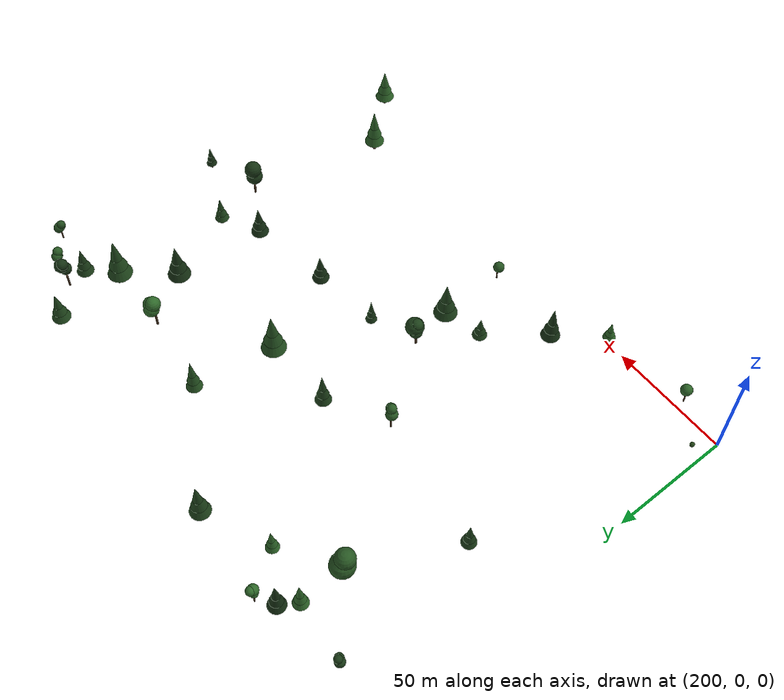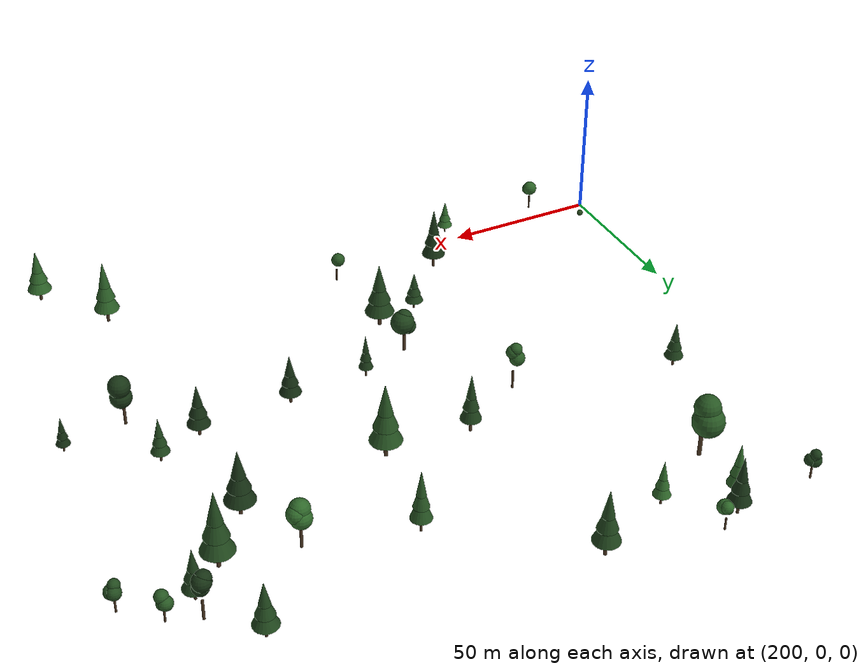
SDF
<sdf version="1.9">
 <world name="detection_world_terrain">
  <model name="tree_0">
   <static>true</static>
   <pose>388.88 87.70 16.57 0 0 4.92</pose>
   <link name="link">
    <visual name="trunk">
     <pose>0 0 2.38 0 0 0</pose>
     <geometry><cylinder><radius>0.33</radius><length>4.77</length></cylinder></geometry>
     <material><ambient>0.28 0.2 0.12 1</ambient><diffuse>0.28 0.2 0.12 1</diffuse></material>
    </visual>
    <visual name="canopy0">
     <pose>0 0 6.13 0 0 0</pose>
     <geometry><cone><radius>2.74</radius><length>5.72</length></cone></geometry>
     <material><ambient>0.125 0.277 0.111 1</ambient><diffuse>0.125 0.277 0.111 1</diffuse></material>
    </visual>
    <visual name="canopy1">
     <pose>0 0 8.86 0 0 0</pose>
     <geometry><cone><radius>2.05</radius><length>5.72</length></cone></geometry>
     <material><ambient>0.125 0.277 0.111 1</ambient><diffuse>0.125 0.277 0.111 1</diffuse></material>
    </visual>
    <visual name="canopy2">
     <pose>0 0 11.58 0 0 0</pose>
     <geometry><cone><radius>1.23</radius><length>5.72</length></cone></geometry>
     <material><ambient>0.125 0.277 0.111 1</ambient><diffuse>0.125 0.277 0.111 1</diffuse></material>
    </visual>
   </link>
  </model>
  <model name="tree_3">
   <static>true</static>
   <pose>381.01 16.56 16.05 0 0 4.20</pose>
   <link name="link">
    <visual name="trunk">
     <pose>0 0 3.51 0 0 0</pose>
     <geometry><cylinder><radius>0.46</radius><length>7.03</length></cylinder></geometry>
     <material><ambient>0.28 0.2 0.12 1</ambient><diffuse>0.28 0.2 0.12 1</diffuse></material>
    </visual>
    <visual name="canopy0">
     <pose>0 0 9.03 0 0 0</pose>
     <geometry><cone><radius>3.85</radius><length>8.43</length></cone></geometry>
     <material><ambient>0.170 0.378 0.151 1</ambient><diffuse>0.170 0.378 0.151 1</diffuse></material>
    </visual>
    <visual name="canopy1">
     <pose>0 0 13.05 0 0 0</pose>
     <geometry><cone><radius>2.89</radius><length>8.43</length></cone></geometry>
     <material><ambient>0.170 0.378 0.151 1</ambient><diffuse>0.170 0.378 0.151 1</diffuse></material>
    </visual>
    <visual name="canopy2">
     <pose>0 0 17.06 0 0 0</pose>
     <geometry><cone><radius>1.73</radius><length>8.43</length></cone></geometry>
     <material><ambient>0.170 0.378 0.151 1</ambient><diffuse>0.170 0.378 0.151 1</diffuse></material>
    </visual>
   </link>
  </model>
  <model name="tree_4">
   <static>true</static>
   <pose>220.23 -2.18 3.32 0 0 4.44</pose>
   <link name="link">
    <visual name="trunk">
     <pose>0 0 2.35 0 0 0</pose>
     <geometry><cylinder><radius>0.30</radius><length>4.70</length></cylinder></geometry>
     <material><ambient>0.28 0.2 0.12 1</ambient><diffuse>0.28 0.2 0.12 1</diffuse></material>
    </visual>
    <visual name="canopy0">
     <pose>-0.46 0.10 8.18 0 0 0</pose>
     <geometry><sphere><radius>2.34</radius></sphere></geometry>
     <material><ambient>0.175 0.389 0.156 1</ambient><diffuse>0.175 0.389 0.156 1</diffuse></material>
    </visual>
    <visual name="canopy1">
     <pose>0.45 -0.08 7.65 0 0 0</pose>
     <geometry><sphere><radius>1.78</radius></sphere></geometry>
     <material><ambient>0.175 0.389 0.156 1</ambient><diffuse>0.175 0.389 0.156 1</diffuse></material>
    </visual>
    <visual name="canopy2">
     <pose>0.01 0.65 7.74 0 0 0</pose>
     <geometry><sphere><radius>1.98</radius></sphere></geometry>
     <material><ambient>0.175 0.389 0.156 1</ambient><diffuse>0.175 0.389 0.156 1</diffuse></material>
    </visual>
   </link>
  </model>
  <model name="tree_5">
   <static>true</static>
   <pose>329.49 106.92 10.80 0 0 2.79</pose>
   <link name="link">
    <visual name="trunk">
     <pose>0 0 4.11 0 0 0</pose>
     <geometry><cylinder><radius>0.59</radius><length>8.22</length></cylinder></geometry>
     <material><ambient>0.28 0.2 0.12 1</ambient><diffuse>0.28 0.2 0.12 1</diffuse></material>
    </visual>
    <visual name="canopy0">
     <pose>0 0 10.57 0 0 0</pose>
     <geometry><cone><radius>4.89</radius><length>9.87</length></cone></geometry>
     <material><ambient>0.144 0.321 0.128 1</ambient><diffuse>0.144 0.321 0.128 1</diffuse></material>
    </visual>
    <visual name="canopy1">
     <pose>0 0 15.27 0 0 0</pose>
     <geometry><cone><radius>3.67</radius><length>9.87</length></cone></geometry>
     <material><ambient>0.144 0.321 0.128 1</ambient><diffuse>0.144 0.321 0.128 1</diffuse></material>
    </visual>
    <visual name="canopy2">
     <pose>0 0 19.97 0 0 0</pose>
     <geometry><cone><radius>2.20</radius><length>9.87</length></cone></geometry>
     <material><ambient>0.144 0.321 0.128 1</ambient><diffuse>0.144 0.321 0.128 1</diffuse></material>
    </visual>
   </link>
  </model>
  <model name="tree_8">
   <static>true</static>
   <pose>399.63 143.85 18.35 0 0 5.10</pose>
   <link name="link">
    <visual name="trunk">
     <pose>0 0 2.71 0 0 0</pose>
     <geometry><cylinder><radius>0.40</radius><length>5.42</length></cylinder></geometry>
     <material><ambient>0.28 0.2 0.12 1</ambient><diffuse>0.28 0.2 0.12 1</diffuse></material>
    </visual>
    <visual name="canopy0">
     <pose>0 0 6.97 0 0 0</pose>
     <geometry><cone><radius>3.35</radius><length>6.50</length></cone></geometry>
     <material><ambient>0.111 0.246 0.098 1</ambient><diffuse>0.111 0.246 0.098 1</diffuse></material>
    </visual>
    <visual name="canopy1">
     <pose>0 0 10.06 0 0 0</pose>
     <geometry><cone><radius>2.51</radius><length>6.50</length></cone></geometry>
     <material><ambient>0.111 0.246 0.098 1</ambient><diffuse>0.111 0.246 0.098 1</diffuse></material>
    </visual>
    <visual name="canopy2">
     <pose>0 0 13.16 0 0 0</pose>
     <geometry><cone><radius>1.51</radius><length>6.50</length></cone></geometry>
     <material><ambient>0.111 0.246 0.098 1</ambient><diffuse>0.111 0.246 0.098 1</diffuse></material>
    </visual>
   </link>
  </model>
  <model name="tree_9">
   <static>true</static>
   <pose>389.90 134.31 17.17 0 0 4.15</pose>
   <link name="link">
    <visual name="trunk">
     <pose>0 0 4.08 0 0 0</pose>
     <geometry><cylinder><radius>0.58</radius><length>8.15</length></cylinder></geometry>
     <material><ambient>0.28 0.2 0.12 1</ambient><diffuse>0.28 0.2 0.12 1</diffuse></material>
    </visual>
    <visual name="canopy0">
     <pose>0 0 10.48 0 0 0</pose>
     <geometry><cone><radius>4.81</radius><length>9.78</length></cone></geometry>
     <material><ambient>0.130 0.288 0.115 1</ambient><diffuse>0.130 0.288 0.115 1</diffuse></material>
    </visual>
    <visual name="canopy1">
     <pose>0 0 15.14 0 0 0</pose>
     <geometry><cone><radius>3.61</radius><length>9.78</length></cone></geometry>
     <material><ambient>0.130 0.288 0.115 1</ambient><diffuse>0.130 0.288 0.115 1</diffuse></material>
    </visual>
    <visual name="canopy2">
     <pose>0 0 19.80 0 0 0</pose>
     <geometry><cone><radius>2.16</radius><length>9.78</length></cone></geometry>
     <material><ambient>0.130 0.288 0.115 1</ambient><diffuse>0.130 0.288 0.115 1</diffuse></material>
    </visual>
   </link>
  </model>
  <model name="tree_10">
   <static>true</static>
   <pose>419.25 141.76 20.75 0 0 0.28</pose>
   <link name="link">
    <visual name="trunk">
     <pose>0 0 1.95 0 0 0</pose>
     <geometry><cylinder><radius>0.28</radius><length>3.90</length></cylinder></geometry>
     <material><ambient>0.28 0.2 0.12 1</ambient><diffuse>0.28 0.2 0.12 1</diffuse></material>
    </visual>
    <visual name="canopy0">
     <pose>0.18 0.48 6.81 0 0 0</pose>
     <geometry><sphere><radius>2.00</radius></sphere></geometry>
     <material><ambient>0.134 0.297 0.119 1</ambient><diffuse>0.134 0.297 0.119 1</diffuse></material>
    </visual>
    <visual name="canopy1">
     <pose>-0.54 -0.39 8.35 0 0 0</pose>
     <geometry><sphere><radius>1.67</radius></sphere></geometry>
     <material><ambient>0.134 0.297 0.119 1</ambient><diffuse>0.134 0.297 0.119 1</diffuse></material>
    </visual>
    <visual name="canopy2">
     <pose>0.44 -0.56 6.54 0 0 0</pose>
     <geometry><sphere><radius>1.97</radius></sphere></geometry>
     <material><ambient>0.134 0.297 0.119 1</ambient><diffuse>0.134 0.297 0.119 1</diffuse></material>
    </visual>
   </link>
  </model>
  <model name="tree_11">
   <static>true</static>
   <pose>334.77 139.41 11.02 0 0 3.81</pose>
   <link name="link">
    <visual name="trunk">
     <pose>0 0 3.42 0 0 0</pose>
     <geometry><cylinder><radius>0.38</radius><length>6.83</length></cylinder></geometry>
     <material><ambient>0.28 0.2 0.12 1</ambient><diffuse>0.28 0.2 0.12 1</diffuse></material>
    </visual>
    <visual name="canopy0">
     <pose>0 0 8.79 0 0 0</pose>
     <geometry><cone><radius>3.17</radius><length>8.20</length></cone></geometry>
     <material><ambient>0.150 0.332 0.133 1</ambient><diffuse>0.150 0.332 0.133 1</diffuse></material>
    </visual>
    <visual name="canopy1">
     <pose>0 0 12.69 0 0 0</pose>
     <geometry><cone><radius>2.37</radius><length>8.20</length></cone></geometry>
     <material><ambient>0.150 0.332 0.133 1</ambient><diffuse>0.150 0.332 0.133 1</diffuse></material>
    </visual>
    <visual name="canopy2">
     <pose>0 0 16.60 0 0 0</pose>
     <geometry><cone><radius>1.42</radius><length>8.20</length></cone></geometry>
     <material><ambient>0.150 0.332 0.133 1</ambient><diffuse>0.150 0.332 0.133 1</diffuse></material>
    </visual>
   </link>
  </model>
  <model name="tree_17">
   <static>true</static>
   <pose>270.19 20.60 6.46 0 0 1.76</pose>
   <link name="link">
    <visual name="trunk">
     <pose>0 0 3.57 0 0 0</pose>
     <geometry><cylinder><radius>0.46</radius><length>7.13</length></cylinder></geometry>
     <material><ambient>0.28 0.2 0.12 1</ambient><diffuse>0.28 0.2 0.12 1</diffuse></material>
    </visual>
    <visual name="canopy0">
     <pose>0 0 9.17 0 0 0</pose>
     <geometry><cone><radius>3.81</radius><length>8.56</length></cone></geometry>
     <material><ambient>0.086 0.191 0.076 1</ambient><diffuse>0.086 0.191 0.076 1</diffuse></material>
    </visual>
    <visual name="canopy1">
     <pose>0 0 13.25 0 0 0</pose>
     <geometry><cone><radius>2.86</radius><length>8.56</length></cone></geometry>
     <material><ambient>0.086 0.191 0.076 1</ambient><diffuse>0.086 0.191 0.076 1</diffuse></material>
    </visual>
    <visual name="canopy2">
     <pose>0 0 17.32 0 0 0</pose>
     <geometry><cone><radius>1.71</radius><length>8.56</length></cone></geometry>
     <material><ambient>0.086 0.191 0.076 1</ambient><diffuse>0.086 0.191 0.076 1</diffuse></material>
    </visual>
   </link>
  </model>
  <model name="tree_18">
   <static>true</static>
   <pose>268.03 154.06 6.07 0 0 3.98</pose>
   <link name="link">
    <visual name="trunk">
     <pose>0 0 2.46 0 0 0</pose>
     <geometry><cylinder><radius>0.32</radius><length>4.91</length></cylinder></geometry>
     <material><ambient>0.28 0.2 0.12 1</ambient><diffuse>0.28 0.2 0.12 1</diffuse></material>
    </visual>
    <visual name="canopy0">
     <pose>0 0 6.31 0 0 0</pose>
     <geometry><cone><radius>2.65</radius><length>5.89</length></cone></geometry>
     <material><ambient>0.183 0.407 0.163 1</ambient><diffuse>0.183 0.407 0.163 1</diffuse></material>
    </visual>
    <visual name="canopy1">
     <pose>0 0 9.12 0 0 0</pose>
     <geometry><cone><radius>1.99</radius><length>5.89</length></cone></geometry>
     <material><ambient>0.183 0.407 0.163 1</ambient><diffuse>0.183 0.407 0.163 1</diffuse></material>
    </visual>
    <visual name="canopy2">
     <pose>0 0 11.93 0 0 0</pose>
     <geometry><cone><radius>1.19</radius><length>5.89</length></cone></geometry>
     <material><ambient>0.183 0.407 0.163 1</ambient><diffuse>0.183 0.407 0.163 1</diffuse></material>
    </visual>
   </link>
  </model>
  <model name="tree_19">
   <static>true</static>
   <pose>344.22 73.31 11.32 0 0 1.21</pose>
   <link name="link">
    <visual name="trunk">
     <pose>0 0 2.77 0 0 0</pose>
     <geometry><cylinder><radius>0.40</radius><length>5.53</length></cylinder></geometry>
     <material><ambient>0.28 0.2 0.12 1</ambient><diffuse>0.28 0.2 0.12 1</diffuse></material>
    </visual>
    <visual name="canopy0">
     <pose>0 0 7.11 0 0 0</pose>
     <geometry><cone><radius>3.35</radius><length>6.64</length></cone></geometry>
     <material><ambient>0.081 0.180 0.072 1</ambient><diffuse>0.081 0.180 0.072 1</diffuse></material>
    </visual>
    <visual name="canopy1">
     <pose>0 0 10.27 0 0 0</pose>
     <geometry><cone><radius>2.51</radius><length>6.64</length></cone></geometry>
     <material><ambient>0.081 0.180 0.072 1</ambient><diffuse>0.081 0.180 0.072 1</diffuse></material>
    </visual>
    <visual name="canopy2">
     <pose>0 0 13.43 0 0 0</pose>
     <geometry><cone><radius>1.51</radius><length>6.64</length></cone></geometry>
     <material><ambient>0.081 0.180 0.072 1</ambient><diffuse>0.081 0.180 0.072 1</diffuse></material>
    </visual>
   </link>
  </model>
  <model name="tree_21">
   <static>true</static>
   <pose>396.78 -1.84 17.58 0 0 5.10</pose>
   <link name="link">
    <visual name="trunk">
     <pose>0 0 2.89 0 0 0</pose>
     <geometry><cylinder><radius>0.45</radius><length>5.79</length></cylinder></geometry>
     <material><ambient>0.28 0.2 0.12 1</ambient><diffuse>0.28 0.2 0.12 1</diffuse></material>
    </visual>
    <visual name="canopy0">
     <pose>0 0 7.44 0 0 0</pose>
     <geometry><cone><radius>3.72</radius><length>6.95</length></cone></geometry>
     <material><ambient>0.176 0.390 0.156 1</ambient><diffuse>0.176 0.390 0.156 1</diffuse></material>
    </visual>
    <visual name="canopy1">
     <pose>0 0 10.75 0 0 0</pose>
     <geometry><cone><radius>2.79</radius><length>6.95</length></cone></geometry>
     <material><ambient>0.176 0.390 0.156 1</ambient><diffuse>0.176 0.390 0.156 1</diffuse></material>
    </visual>
    <visual name="canopy2">
     <pose>0 0 14.06 0 0 0</pose>
     <geometry><cone><radius>1.67</radius><length>6.95</length></cone></geometry>
     <material><ambient>0.176 0.390 0.156 1</ambient><diffuse>0.176 0.390 0.156 1</diffuse></material>
    </visual>
   </link>
  </model>
  <model name="tree_22">
   <static>true</static>
   <pose>257.60 169.80 5.21 0 0 1.76</pose>
   <link name="link">
    <visual name="trunk">
     <pose>0 0 1.95 0 0 0</pose>
     <geometry><cylinder><radius>0.29</radius><length>3.91</length></cylinder></geometry>
     <material><ambient>0.28 0.2 0.12 1</ambient><diffuse>0.28 0.2 0.12 1</diffuse></material>
    </visual>
    <visual name="canopy0">
     <pose>-0.14 0.26 7.03 0 0 0</pose>
     <geometry><sphere><radius>1.64</radius></sphere></geometry>
     <material><ambient>0.188 0.417 0.167 1</ambient><diffuse>0.188 0.417 0.167 1</diffuse></material>
    </visual>
    <visual name="canopy1">
     <pose>0.32 -0.73 8.44 0 0 0</pose>
     <geometry><sphere><radius>1.91</radius></sphere></geometry>
     <material><ambient>0.188 0.417 0.167 1</ambient><diffuse>0.188 0.417 0.167 1</diffuse></material>
    </visual>
    <visual name="canopy2">
     <pose>-0.59 -0.56 7.96 0 0 0</pose>
     <geometry><sphere><radius>2.21</radius></sphere></geometry>
     <material><ambient>0.188 0.417 0.167 1</ambient><diffuse>0.188 0.417 0.167 1</diffuse></material>
    </visual>
   </link>
  </model>
  <model name="tree_24">
   <static>true</static>
   <pose>409.30 149.07 19.62 0 0 4.51</pose>
   <link name="link">
    <visual name="trunk">
     <pose>0 0 1.85 0 0 0</pose>
     <geometry><cylinder><radius>0.28</radius><length>3.71</length></cylinder></geometry>
     <material><ambient>0.28 0.2 0.12 1</ambient><diffuse>0.28 0.2 0.12 1</diffuse></material>
    </visual>
    <visual name="canopy0">
     <pose>0.22 0.30 8.21 0 0 0</pose>
     <geometry><sphere><radius>1.92</radius></sphere></geometry>
     <material><ambient>0.157 0.348 0.139 1</ambient><diffuse>0.157 0.348 0.139 1</diffuse></material>
    </visual>
    <visual name="canopy1">
     <pose>-0.18 0.05 6.37 0 0 0</pose>
     <geometry><sphere><radius>1.88</radius></sphere></geometry>
     <material><ambient>0.157 0.348 0.139 1</ambient><diffuse>0.157 0.348 0.139 1</diffuse></material>
    </visual>
    <visual name="canopy2">
     <pose>-0.69 -0.49 6.71 0 0 0</pose>
     <geometry><sphere><radius>2.04</radius></sphere></geometry>
     <material><ambient>0.157 0.348 0.139 1</ambient><diffuse>0.157 0.348 0.139 1</diffuse></material>
    </visual>
   </link>
  </model>
  <model name="tree_25">
   <static>true</static>
   <pose>287.65 40.98 7.52 0 0 2.48</pose>
   <link name="link">
    <visual name="trunk">
     <pose>0 0 2.15 0 0 0</pose>
     <geometry><cylinder><radius>0.35</radius><length>4.30</length></cylinder></geometry>
     <material><ambient>0.28 0.2 0.12 1</ambient><diffuse>0.28 0.2 0.12 1</diffuse></material>
    </visual>
    <visual name="canopy0">
     <pose>0 0 5.53 0 0 0</pose>
     <geometry><cone><radius>2.93</radius><length>5.16</length></cone></geometry>
     <material><ambient>0.112 0.249 0.100 1</ambient><diffuse>0.112 0.249 0.100 1</diffuse></material>
    </visual>
    <visual name="canopy1">
     <pose>0 0 7.99 0 0 0</pose>
     <geometry><cone><radius>2.20</radius><length>5.16</length></cone></geometry>
     <material><ambient>0.112 0.249 0.100 1</ambient><diffuse>0.112 0.249 0.100 1</diffuse></material>
    </visual>
    <visual name="canopy2">
     <pose>0 0 10.45 0 0 0</pose>
     <geometry><cone><radius>1.32</radius><length>5.16</length></cone></geometry>
     <material><ambient>0.112 0.249 0.100 1</ambient><diffuse>0.112 0.249 0.100 1</diffuse></material>
    </visual>
   </link>
  </model>
  <model name="tree_28">
   <static>true</static>
   <pose>388.17 161.92 16.92 0 0 1.90</pose>
   <link name="link">
    <visual name="trunk">
     <pose>0 0 2.92 0 0 0</pose>
     <geometry><cylinder><radius>0.43</radius><length>5.85</length></cylinder></geometry>
     <material><ambient>0.28 0.2 0.12 1</ambient><diffuse>0.28 0.2 0.12 1</diffuse></material>
    </visual>
    <visual name="canopy0">
     <pose>0 0 7.52 0 0 0</pose>
     <geometry><cone><radius>3.61</radius><length>7.02</length></cone></geometry>
     <material><ambient>0.127 0.282 0.113 1</ambient><diffuse>0.127 0.282 0.113 1</diffuse></material>
    </visual>
    <visual name="canopy1">
     <pose>0 0 10.86 0 0 0</pose>
     <geometry><cone><radius>2.71</radius><length>7.02</length></cone></geometry>
     <material><ambient>0.127 0.282 0.113 1</ambient><diffuse>0.127 0.282 0.113 1</diffuse></material>
    </visual>
    <visual name="canopy2">
     <pose>0 0 14.20 0 0 0</pose>
     <geometry><cone><radius>1.62</radius><length>7.02</length></cone></geometry>
     <material><ambient>0.127 0.282 0.113 1</ambient><diffuse>0.127 0.282 0.113 1</diffuse></material>
    </visual>
   </link>
  </model>
  <model name="tree_29">
   <static>true</static>
   <pose>366.95 134.10 14.15 0 0 2.66</pose>
   <link name="link">
    <visual name="trunk">
     <pose>0 0 3.29 0 0 0</pose>
     <geometry><cylinder><radius>0.43</radius><length>6.57</length></cylinder></geometry>
     <material><ambient>0.28 0.2 0.12 1</ambient><diffuse>0.28 0.2 0.12 1</diffuse></material>
    </visual>
    <visual name="canopy0">
     <pose>0.30 -0.93 10.72 0 0 0</pose>
     <geometry><sphere><radius>3.08</radius></sphere></geometry>
     <material><ambient>0.186 0.414 0.166 1</ambient><diffuse>0.186 0.414 0.166 1</diffuse></material>
    </visual>
    <visual name="canopy1">
     <pose>-0.94 -1.05 12.17 0 0 0</pose>
     <geometry><sphere><radius>2.79</radius></sphere></geometry>
     <material><ambient>0.186 0.414 0.166 1</ambient><diffuse>0.186 0.414 0.166 1</diffuse></material>
    </visual>
    <visual name="canopy2">
     <pose>-0.11 -0.02 13.07 0 0 0</pose>
     <geometry><sphere><radius>2.99</radius></sphere></geometry>
     <material><ambient>0.186 0.414 0.166 1</ambient><diffuse>0.186 0.414 0.166 1</diffuse></material>
    </visual>
   </link>
  </model>
  <model name="tree_30">
   <static>true</static>
   <pose>293.67 166.08 7.90 0 0 0.40</pose>
   <link name="link">
    <visual name="trunk">
     <pose>0 0 3.65 0 0 0</pose>
     <geometry><cylinder><radius>0.49</radius><length>7.31</length></cylinder></geometry>
     <material><ambient>0.28 0.2 0.12 1</ambient><diffuse>0.28 0.2 0.12 1</diffuse></material>
    </visual>
    <visual name="canopy0">
     <pose>0 0 9.40 0 0 0</pose>
     <geometry><cone><radius>4.06</radius><length>8.77</length></cone></geometry>
     <material><ambient>0.120 0.266 0.106 1</ambient><diffuse>0.120 0.266 0.106 1</diffuse></material>
    </visual>
    <visual name="canopy1">
     <pose>0 0 13.57 0 0 0</pose>
     <geometry><cone><radius>3.05</radius><length>8.77</length></cone></geometry>
     <material><ambient>0.120 0.266 0.106 1</ambient><diffuse>0.120 0.266 0.106 1</diffuse></material>
    </visual>
    <visual name="canopy2">
     <pose>0 0 17.75 0 0 0</pose>
     <geometry><cone><radius>1.83</radius><length>8.77</length></cone></geometry>
     <material><ambient>0.120 0.266 0.106 1</ambient><diffuse>0.120 0.266 0.106 1</diffuse></material>
    </visual>
   </link>
  </model>
  <model name="tree_31">
   <static>true</static>
   <pose>392.72 68.68 17.22 0 0 0.93</pose>
   <link name="link">
    <visual name="trunk">
     <pose>0 0 2.86 0 0 0</pose>
     <geometry><cylinder><radius>0.42</radius><length>5.71</length></cylinder></geometry>
     <material><ambient>0.28 0.2 0.12 1</ambient><diffuse>0.28 0.2 0.12 1</diffuse></material>
    </visual>
    <visual name="canopy0">
     <pose>-0.21 -0.61 9.15 0 0 0</pose>
     <geometry><sphere><radius>3.26</radius></sphere></geometry>
     <material><ambient>0.094 0.209 0.083 1</ambient><diffuse>0.094 0.209 0.083 1</diffuse></material>
    </visual>
    <visual name="canopy1">
     <pose>-0.60 -0.74 9.79 0 0 0</pose>
     <geometry><sphere><radius>2.56</radius></sphere></geometry>
     <material><ambient>0.094 0.209 0.083 1</ambient><diffuse>0.094 0.209 0.083 1</diffuse></material>
    </visual>
    <visual name="canopy2">
     <pose>0.10 -0.73 13.01 0 0 0</pose>
     <geometry><sphere><radius>3.30</radius></sphere></geometry>
     <material><ambient>0.094 0.209 0.083 1</ambient><diffuse>0.094 0.209 0.083 1</diffuse></material>
    </visual>
   </link>
  </model>
  <model name="tree_32">
   <static>true</static>
   <pose>301.18 61.18 8.32 0 0 1.61</pose>
   <link name="link">
    <visual name="trunk">
     <pose>0 0 2.96 0 0 0</pose>
     <geometry><cylinder><radius>0.47</radius><length>5.93</length></cylinder></geometry>
     <material><ambient>0.28 0.2 0.12 1</ambient><diffuse>0.28 0.2 0.12 1</diffuse></material>
    </visual>
    <visual name="canopy0">
     <pose>-0.00 -0.00 12.15 0 0 0</pose>
     <geometry><sphere><radius>2.65</radius></sphere></geometry>
     <material><ambient>0.116 0.257 0.103 1</ambient><diffuse>0.116 0.257 0.103 1</diffuse></material>
    </visual>
    <visual name="canopy1">
     <pose>0.26 -0.67 10.76 0 0 0</pose>
     <geometry><sphere><radius>3.70</radius></sphere></geometry>
     <material><ambient>0.116 0.257 0.103 1</ambient><diffuse>0.116 0.257 0.103 1</diffuse></material>
    </visual>
    <visual name="canopy2">
     <pose>0.95 0.75 9.46 0 0 0</pose>
     <geometry><sphere><radius>2.58</radius></sphere></geometry>
     <material><ambient>0.116 0.257 0.103 1</ambient><diffuse>0.116 0.257 0.103 1</diffuse></material>
    </visual>
   </link>
  </model>
  <model name="tree_33">
   <static>true</static>
   <pose>376.83 116.39 15.47 0 0 0.53</pose>
   <link name="link">
    <visual name="trunk">
     <pose>0 0 3.51 0 0 0</pose>
     <geometry><cylinder><radius>0.54</radius><length>7.02</length></cylinder></geometry>
     <material><ambient>0.28 0.2 0.12 1</ambient><diffuse>0.28 0.2 0.12 1</diffuse></material>
    </visual>
    <visual name="canopy0">
     <pose>0 0 9.02 0 0 0</pose>
     <geometry><cone><radius>4.50</radius><length>8.42</length></cone></geometry>
     <material><ambient>0.088 0.196 0.078 1</ambient><diffuse>0.088 0.196 0.078 1</diffuse></material>
    </visual>
    <visual name="canopy1">
     <pose>0 0 13.03 0 0 0</pose>
     <geometry><cone><radius>3.38</radius><length>8.42</length></cone></geometry>
     <material><ambient>0.088 0.196 0.078 1</ambient><diffuse>0.088 0.196 0.078 1</diffuse></material>
    </visual>
    <visual name="canopy2">
     <pose>0 0 17.05 0 0 0</pose>
     <geometry><cone><radius>2.03</radius><length>8.42</length></cone></geometry>
     <material><ambient>0.088 0.196 0.078 1</ambient><diffuse>0.088 0.196 0.078 1</diffuse></material>
    </visual>
   </link>
  </model>
  <model name="tree_37">
   <static>true</static>
   <pose>256.39 2.33 5.85 0 0 1.90</pose>
   <link name="link">
    <visual name="trunk">
     <pose>0 0 1.91 0 0 0</pose>
     <geometry><cylinder><radius>0.30</radius><length>3.82</length></cylinder></geometry>
     <material><ambient>0.28 0.2 0.12 1</ambient><diffuse>0.28 0.2 0.12 1</diffuse></material>
    </visual>
    <visual name="canopy0">
     <pose>0 0 4.91 0 0 0</pose>
     <geometry><cone><radius>2.50</radius><length>4.59</length></cone></geometry>
     <material><ambient>0.183 0.406 0.163 1</ambient><diffuse>0.183 0.406 0.163 1</diffuse></material>
    </visual>
    <visual name="canopy1">
     <pose>0 0 7.10 0 0 0</pose>
     <geometry><cone><radius>1.87</radius><length>4.59</length></cone></geometry>
     <material><ambient>0.183 0.406 0.163 1</ambient><diffuse>0.183 0.406 0.163 1</diffuse></material>
    </visual>
    <visual name="canopy2">
     <pose>0 0 9.28 0 0 0</pose>
     <geometry><cone><radius>1.12</radius><length>4.59</length></cone></geometry>
     <material><ambient>0.183 0.406 0.163 1</ambient><diffuse>0.183 0.406 0.163 1</diffuse></material>
    </visual>
   </link>
  </model>
  <model name="tree_38">
   <static>true</static>
   <pose>301.61 105.41 8.59 0 0 5.21</pose>
   <link name="link">
    <visual name="trunk">
     <pose>0 0 3.32 0 0 0</pose>
     <geometry><cylinder><radius>0.39</radius><length>6.64</length></cylinder></geometry>
     <material><ambient>0.28 0.2 0.12 1</ambient><diffuse>0.28 0.2 0.12 1</diffuse></material>
    </visual>
    <visual name="canopy0">
     <pose>0 0 8.54 0 0 0</pose>
     <geometry><cone><radius>3.23</radius><length>7.97</length></cone></geometry>
     <material><ambient>0.112 0.249 0.100 1</ambient><diffuse>0.112 0.249 0.100 1</diffuse></material>
    </visual>
    <visual name="canopy1">
     <pose>0 0 12.33 0 0 0</pose>
     <geometry><cone><radius>2.42</radius><length>7.97</length></cone></geometry>
     <material><ambient>0.112 0.249 0.100 1</ambient><diffuse>0.112 0.249 0.100 1</diffuse></material>
    </visual>
    <visual name="canopy2">
     <pose>0 0 16.13 0 0 0</pose>
     <geometry><cone><radius>1.45</radius><length>7.97</length></cone></geometry>
     <material><ambient>0.112 0.249 0.100 1</ambient><diffuse>0.112 0.249 0.100 1</diffuse></material>
    </visual>
   </link>
  </model>
  <model name="tree_40">
   <static>true</static>
   <pose>250.27 165.48 4.81 0 0 2.96</pose>
   <link name="link">
    <visual name="trunk">
     <pose>0 0 3.25 0 0 0</pose>
     <geometry><cylinder><radius>0.43</radius><length>6.50</length></cylinder></geometry>
     <material><ambient>0.28 0.2 0.12 1</ambient><diffuse>0.28 0.2 0.12 1</diffuse></material>
    </visual>
    <visual name="canopy0">
     <pose>0 0 8.35 0 0 0</pose>
     <geometry><cone><radius>3.54</radius><length>7.80</length></cone></geometry>
     <material><ambient>0.086 0.191 0.077 1</ambient><diffuse>0.086 0.191 0.077 1</diffuse></material>
    </visual>
    <visual name="canopy1">
     <pose>0 0 12.07 0 0 0</pose>
     <geometry><cone><radius>2.66</radius><length>7.80</length></cone></geometry>
     <material><ambient>0.086 0.191 0.077 1</ambient><diffuse>0.086 0.191 0.077 1</diffuse></material>
    </visual>
    <visual name="canopy2">
     <pose>0 0 15.78 0 0 0</pose>
     <geometry><cone><radius>1.60</radius><length>7.80</length></cone></geometry>
     <material><ambient>0.086 0.191 0.077 1</ambient><diffuse>0.086 0.191 0.077 1</diffuse></material>
    </visual>
   </link>
  </model>
  <model name="tree_42">
   <static>true</static>
   <pose>245.42 140.01 4.75 0 0 3.05</pose>
   <link name="link">
    <visual name="trunk">
     <pose>0 0 4.00 0 0 0</pose>
     <geometry><cylinder><radius>0.63</radius><length>7.99</length></cylinder></geometry>
     <material><ambient>0.28 0.2 0.12 1</ambient><diffuse>0.28 0.2 0.12 1</diffuse></material>
    </visual>
    <visual name="canopy0">
     <pose>0.98 0.06 17.04 0 0 0</pose>
     <geometry><sphere><radius>3.50</radius></sphere></geometry>
     <material><ambient>0.155 0.343 0.137 1</ambient><diffuse>0.155 0.343 0.137 1</diffuse></material>
    </visual>
    <visual name="canopy1">
     <pose>0.89 -0.17 16.88 0 0 0</pose>
     <geometry><sphere><radius>3.99</radius></sphere></geometry>
     <material><ambient>0.155 0.343 0.137 1</ambient><diffuse>0.155 0.343 0.137 1</diffuse></material>
    </visual>
    <visual name="canopy2">
     <pose>0.91 -1.34 12.81 0 0 0</pose>
     <geometry><sphere><radius>4.86</radius></sphere></geometry>
     <material><ambient>0.155 0.343 0.137 1</ambient><diffuse>0.155 0.343 0.137 1</diffuse></material>
    </visual>
   </link>
  </model>
  <model name="tree_43">
   <static>true</static>
   <pose>400.21 151.23 18.31 0 0 0.62</pose>
   <link name="link">
    <visual name="trunk">
     <pose>0 0 3.15 0 0 0</pose>
     <geometry><cylinder><radius>0.38</radius><length>6.30</length></cylinder></geometry>
     <material><ambient>0.28 0.2 0.12 1</ambient><diffuse>0.28 0.2 0.12 1</diffuse></material>
    </visual>
    <visual name="canopy0">
     <pose>0.61 0.74 13.41 0 0 0</pose>
     <geometry><sphere><radius>2.70</radius></sphere></geometry>
     <material><ambient>0.091 0.202 0.081 1</ambient><diffuse>0.091 0.202 0.081 1</diffuse></material>
    </visual>
    <visual name="canopy1">
     <pose>-0.15 -0.37 10.41 0 0 0</pose>
     <geometry><sphere><radius>2.39</radius></sphere></geometry>
     <material><ambient>0.091 0.202 0.081 1</ambient><diffuse>0.091 0.202 0.081 1</diffuse></material>
    </visual>
    <visual name="canopy2">
     <pose>0.13 0.81 14.11 0 0 0</pose>
     <geometry><sphere><radius>2.38</radius></sphere></geometry>
     <material><ambient>0.091 0.202 0.081 1</ambient><diffuse>0.091 0.202 0.081 1</diffuse></material>
    </visual>
   </link>
  </model>
  <model name="tree_44">
   <static>true</static>
   <pose>374.76 79.65 14.87 0 0 5.77</pose>
   <link name="link">
    <visual name="trunk">
     <pose>0 0 2.84 0 0 0</pose>
     <geometry><cylinder><radius>0.42</radius><length>5.69</length></cylinder></geometry>
     <material><ambient>0.28 0.2 0.12 1</ambient><diffuse>0.28 0.2 0.12 1</diffuse></material>
    </visual>
    <visual name="canopy0">
     <pose>0 0 7.31 0 0 0</pose>
     <geometry><cone><radius>3.49</radius><length>6.83</length></cone></geometry>
     <material><ambient>0.084 0.187 0.075 1</ambient><diffuse>0.084 0.187 0.075 1</diffuse></material>
    </visual>
    <visual name="canopy1">
     <pose>0 0 10.57 0 0 0</pose>
     <geometry><cone><radius>2.62</radius><length>6.83</length></cone></geometry>
     <material><ambient>0.084 0.187 0.075 1</ambient><diffuse>0.084 0.187 0.075 1</diffuse></material>
    </visual>
    <visual name="canopy2">
     <pose>0 0 13.82 0 0 0</pose>
     <geometry><cone><radius>1.57</radius><length>6.83</length></cone></geometry>
     <material><ambient>0.084 0.187 0.075 1</ambient><diffuse>0.084 0.187 0.075 1</diffuse></material>
    </visual>
   </link>
  </model>
  <model name="tree_45">
   <static>true</static>
   <pose>412.45 75.66 19.64 0 0 2.18</pose>
   <link name="link">
    <visual name="trunk">
     <pose>0 0 1.92 0 0 0</pose>
     <geometry><cylinder><radius>0.25</radius><length>3.84</length></cylinder></geometry>
     <material><ambient>0.28 0.2 0.12 1</ambient><diffuse>0.28 0.2 0.12 1</diffuse></material>
    </visual>
    <visual name="canopy0">
     <pose>0 0 4.94 0 0 0</pose>
     <geometry><cone><radius>2.07</radius><length>4.61</length></cone></geometry>
     <material><ambient>0.084 0.187 0.075 1</ambient><diffuse>0.084 0.187 0.075 1</diffuse></material>
    </visual>
    <visual name="canopy1">
     <pose>0 0 7.14 0 0 0</pose>
     <geometry><cone><radius>1.55</radius><length>4.61</length></cone></geometry>
     <material><ambient>0.084 0.187 0.075 1</ambient><diffuse>0.084 0.187 0.075 1</diffuse></material>
    </visual>
    <visual name="canopy2">
     <pose>0 0 9.34 0 0 0</pose>
     <geometry><cone><radius>0.93</radius><length>4.61</length></cone></geometry>
     <material><ambient>0.084 0.187 0.075 1</ambient><diffuse>0.084 0.187 0.075 1</diffuse></material>
    </visual>
   </link>
  </model>
  <model name="tree_46">
   <static>true</static>
   <pose>221.99 161.27 3.38 0 0 6.02</pose>
   <link name="link">
    <visual name="trunk">
     <pose>0 0 1.92 0 0 0</pose>
     <geometry><cylinder><radius>0.31</radius><length>3.85</length></cylinder></geometry>
     <material><ambient>0.28 0.2 0.12 1</ambient><diffuse>0.28 0.2 0.12 1</diffuse></material>
    </visual>
    <visual name="canopy0">
     <pose>-0.45 0.27 8.62 0 0 0</pose>
     <geometry><sphere><radius>1.64</radius></sphere></geometry>
     <material><ambient>0.103 0.230 0.092 1</ambient><diffuse>0.103 0.230 0.092 1</diffuse></material>
    </visual>
    <visual name="canopy1">
     <pose>-0.75 -0.20 6.11 0 0 0</pose>
     <geometry><sphere><radius>2.06</radius></sphere></geometry>
     <material><ambient>0.103 0.230 0.092 1</ambient><diffuse>0.103 0.230 0.092 1</diffuse></material>
    </visual>
    <visual name="canopy2">
     <pose>0.55 -0.48 6.35 0 0 0</pose>
     <geometry><sphere><radius>1.83</radius></sphere></geometry>
     <material><ambient>0.103 0.230 0.092 1</ambient><diffuse>0.103 0.230 0.092 1</diffuse></material>
    </visual>
   </link>
  </model>
  <model name="tree_47">
   <static>true</static>
   <pose>246.03 158.62 4.64 0 0 6.02</pose>
   <link name="link">
    <visual name="trunk">
     <pose>0 0 2.91 0 0 0</pose>
     <geometry><cylinder><radius>0.37</radius><length>5.82</length></cylinder></geometry>
     <material><ambient>0.28 0.2 0.12 1</ambient><diffuse>0.28 0.2 0.12 1</diffuse></material>
    </visual>
    <visual name="canopy0">
     <pose>0 0 7.48 0 0 0</pose>
     <geometry><cone><radius>3.05</radius><length>6.98</length></cone></geometry>
     <material><ambient>0.182 0.405 0.162 1</ambient><diffuse>0.182 0.405 0.162 1</diffuse></material>
    </visual>
    <visual name="canopy1">
     <pose>0 0 10.81 0 0 0</pose>
     <geometry><cone><radius>2.29</radius><length>6.98</length></cone></geometry>
     <material><ambient>0.182 0.405 0.162 1</ambient><diffuse>0.182 0.405 0.162 1</diffuse></material>
    </visual>
    <visual name="canopy2">
     <pose>0 0 14.13 0 0 0</pose>
     <geometry><cone><radius>1.37</radius><length>6.98</length></cone></geometry>
     <material><ambient>0.182 0.405 0.162 1</ambient><diffuse>0.182 0.405 0.162 1</diffuse></material>
    </visual>
   </link>
  </model>
  <model name="tree_49">
   <static>true</static>
   <pose>304.05 17.26 8.79 0 0 5.97</pose>
   <link name="link">
    <visual name="trunk">
     <pose>0 0 2.10 0 0 0</pose>
     <geometry><cylinder><radius>0.28</radius><length>4.20</length></cylinder></geometry>
     <material><ambient>0.28 0.2 0.12 1</ambient><diffuse>0.28 0.2 0.12 1</diffuse></material>
    </visual>
    <visual name="canopy0">
     <pose>-0.58 -0.08 7.70 0 0 0</pose>
     <geometry><sphere><radius>2.17</radius></sphere></geometry>
     <material><ambient>0.150 0.333 0.133 1</ambient><diffuse>0.150 0.333 0.133 1</diffuse></material>
    </visual>
    <visual name="canopy1">
     <pose>-0.62 -0.13 7.85 0 0 0</pose>
     <geometry><sphere><radius>1.99</radius></sphere></geometry>
     <material><ambient>0.150 0.333 0.133 1</ambient><diffuse>0.150 0.333 0.133 1</diffuse></material>
    </visual>
    <visual name="canopy2">
     <pose>-0.25 -0.41 7.47 0 0 0</pose>
     <geometry><sphere><radius>1.78</radius></sphere></geometry>
     <material><ambient>0.150 0.333 0.133 1</ambient><diffuse>0.150 0.333 0.133 1</diffuse></material>
    </visual>
   </link>
  </model>
  <model name="tree_53">
   <static>true</static>
   <pose>279.71 91.34 7.18 0 0 3.65</pose>
   <link name="link">
    <visual name="trunk">
     <pose>0 0 3.09 0 0 0</pose>
     <geometry><cylinder><radius>0.36</radius><length>6.17</length></cylinder></geometry>
     <material><ambient>0.28 0.2 0.12 1</ambient><diffuse>0.28 0.2 0.12 1</diffuse></material>
    </visual>
    <visual name="canopy0">
     <pose>-0.05 0.33 13.05 0 0 0</pose>
     <geometry><sphere><radius>2.07</radius></sphere></geometry>
     <material><ambient>0.157 0.350 0.140 1</ambient><diffuse>0.157 0.350 0.140 1</diffuse></material>
    </visual>
    <visual name="canopy1">
     <pose>0.48 -0.40 14.04 0 0 0</pose>
     <geometry><sphere><radius>1.95</radius></sphere></geometry>
     <material><ambient>0.157 0.350 0.140 1</ambient><diffuse>0.157 0.350 0.140 1</diffuse></material>
    </visual>
    <visual name="canopy2">
     <pose>0.70 -0.84 10.83 0 0 0</pose>
     <geometry><sphere><radius>2.39</radius></sphere></geometry>
     <material><ambient>0.157 0.350 0.140 1</ambient><diffuse>0.157 0.350 0.140 1</diffuse></material>
    </visual>
   </link>
  </model>
  <model name="tree_55">
   <static>true</static>
   <pose>227.09 99.36 3.66 0 0 5.78</pose>
   <link name="link">
    <visual name="trunk">
     <pose>0 0 2.58 0 0 0</pose>
     <geometry><cylinder><radius>0.36</radius><length>5.17</length></cylinder></geometry>
     <material><ambient>0.28 0.2 0.12 1</ambient><diffuse>0.28 0.2 0.12 1</diffuse></material>
    </visual>
    <visual name="canopy0">
     <pose>0 0 6.64 0 0 0</pose>
     <geometry><cone><radius>2.99</radius><length>6.20</length></cone></geometry>
     <material><ambient>0.108 0.240 0.096 1</ambient><diffuse>0.108 0.240 0.096 1</diffuse></material>
    </visual>
    <visual name="canopy1">
     <pose>0 0 9.59 0 0 0</pose>
     <geometry><cone><radius>2.24</radius><length>6.20</length></cone></geometry>
     <material><ambient>0.108 0.240 0.096 1</ambient><diffuse>0.108 0.240 0.096 1</diffuse></material>
    </visual>
    <visual name="canopy2">
     <pose>0 0 12.54 0 0 0</pose>
     <geometry><cone><radius>1.34</radius><length>6.20</length></cone></geometry>
     <material><ambient>0.108 0.240 0.096 1</ambient><diffuse>0.108 0.240 0.096 1</diffuse></material>
    </visual>
   </link>
  </model>
  <model name="tree_57">
   <static>true</static>
   <pose>302.16 45.76 8.56 0 0 2.33</pose>
   <link name="link">
    <visual name="trunk">
     <pose>0 0 3.66 0 0 0</pose>
     <geometry><cylinder><radius>0.56</radius><length>7.31</length></cylinder></geometry>
     <material><ambient>0.28 0.2 0.12 1</ambient><diffuse>0.28 0.2 0.12 1</diffuse></material>
    </visual>
    <visual name="canopy0">
     <pose>0 0 9.40 0 0 0</pose>
     <geometry><cone><radius>4.66</radius><length>8.78</length></cone></geometry>
     <material><ambient>0.113 0.250 0.100 1</ambient><diffuse>0.113 0.250 0.100 1</diffuse></material>
    </visual>
    <visual name="canopy1">
     <pose>0 0 13.58 0 0 0</pose>
     <geometry><cone><radius>3.50</radius><length>8.78</length></cone></geometry>
     <material><ambient>0.113 0.250 0.100 1</ambient><diffuse>0.113 0.250 0.100 1</diffuse></material>
    </visual>
    <visual name="canopy2">
     <pose>0 0 17.76 0 0 0</pose>
     <geometry><cone><radius>2.10</radius><length>8.78</length></cone></geometry>
     <material><ambient>0.113 0.250 0.100 1</ambient><diffuse>0.113 0.250 0.100 1</diffuse></material>
    </visual>
   </link>
  </model>
  <model name="tree_63">
   <static>true</static>
   <pose>318.04 69.40 9.59 0 0 0.02</pose>
   <link name="link">
    <visual name="trunk">
     <pose>0 0 2.40 0 0 0</pose>
     <geometry><cylinder><radius>0.27</radius><length>4.80</length></cylinder></geometry>
     <material><ambient>0.28 0.2 0.12 1</ambient><diffuse>0.28 0.2 0.12 1</diffuse></material>
    </visual>
    <visual name="canopy0">
     <pose>0 0 6.17 0 0 0</pose>
     <geometry><cone><radius>2.24</radius><length>5.76</length></cone></geometry>
     <material><ambient>0.099 0.219 0.088 1</ambient><diffuse>0.099 0.219 0.088 1</diffuse></material>
    </visual>
    <visual name="canopy1">
     <pose>0 0 8.92 0 0 0</pose>
     <geometry><cone><radius>1.68</radius><length>5.76</length></cone></geometry>
     <material><ambient>0.099 0.219 0.088 1</ambient><diffuse>0.099 0.219 0.088 1</diffuse></material>
    </visual>
    <visual name="canopy2">
     <pose>0 0 11.66 0 0 0</pose>
     <geometry><cone><radius>1.01</radius><length>5.76</length></cone></geometry>
     <material><ambient>0.099 0.219 0.088 1</ambient><diffuse>0.099 0.219 0.088 1</diffuse></material>
    </visual>
   </link>
  </model>
  <model name="bush_8">
   <static>true</static>
   <pose>205.41 8.62 2.99 0 0 0</pose>
   <link name="link">
    <visual name="v">
     <geometry><sphere><radius>1.02</radius></sphere></geometry>
     <material><ambient>0.136 0.273 0.095 1</ambient><diffuse>0.136 0.273 0.095 1</diffuse></material>
    </visual>
   </link>
  </model>
 </world>
</sdf>
